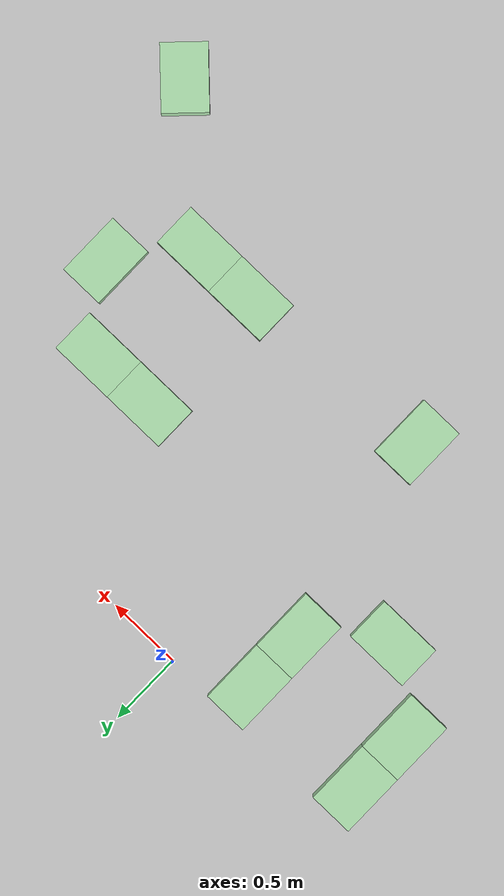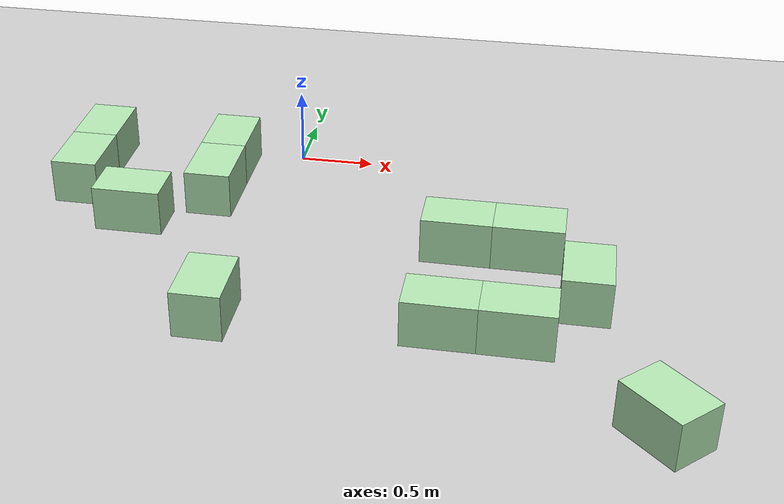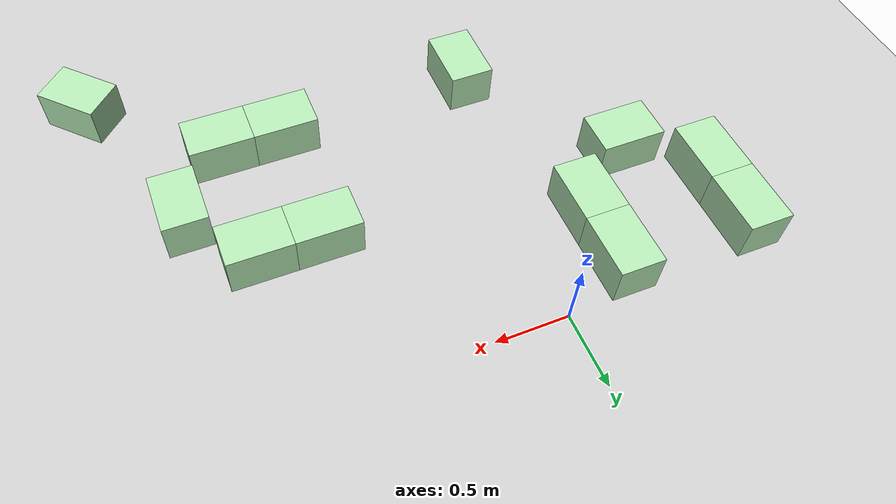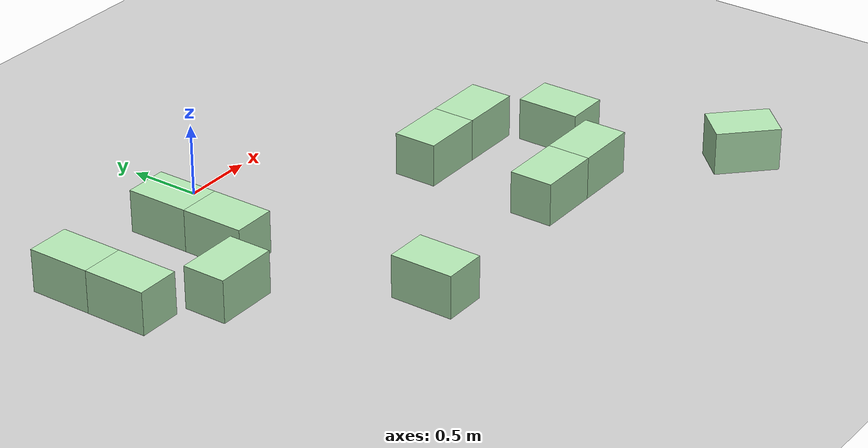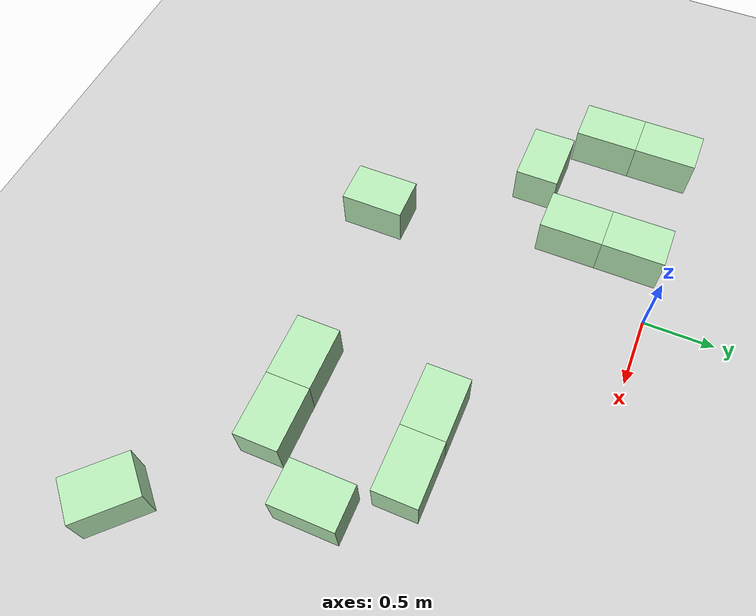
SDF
<?xml version="1.0" encoding="UTF-8"?>
<sdf version="1.4">
  <world name="default">
    <scene>
      <ambient>0.5 0.5 0.5 1</ambient>
      <background>0.5 0.5 0.5 1</background>
      <shadows>false</shadows>
    </scene>
    <physics type="ode">
      <gravity>0 0 -9.81</gravity>
      <ode>
        <solver>
          <type>quick</type>
          <iters>10</iters>
          <sor>1.3</sor>
        </solver>
        <constraints>
          <cfm>0.0</cfm>
          <erp>0.2</erp>
          <contact_max_correcting_vel>100.0</contact_max_correcting_vel>
          <contact_surface_layer>0.001</contact_surface_layer>
        </constraints>
      </ode>
      <real_time_update_rate>1000</real_time_update_rate>
      <max_step_size>0.001</max_step_size>
    </physics>
    <light type="directional" name="directional_light_1">
      <cast_shadows>false</cast_shadows>
      <pose>0 0 30 0.1 0.1 0</pose>
      <diffuse>1.0 1.0 1.0 1</diffuse>
      <specular>.1 .1 .1 1</specular>
      <attenuation>
        <range>300</range>
      </attenuation>
      <direction>0.1 0.1 -1</direction>
    </light>
    <model name='ground_plane'>
      <static>1</static>
      <link name='link'>
        <collision name='collision'>
          <geometry>
            <plane>
              <normal>0 0 1</normal>
              <size>100 100</size>
            </plane>
          </geometry>
          <surface>
            <friction>
              <ode>
                <mu>100</mu>
                <mu2>50</mu2>
              </ode>
              <torsional>
                <ode/>
              </torsional>
            </friction>
            <contact>
              <ode/>
            </contact>
            <bounce/>
          </surface>
          <max_contacts>10</max_contacts>
        </collision>
        <visual name='visual'>
          <cast_shadows>0</cast_shadows>
          <geometry>
            <plane>
              <normal>0 0 1</normal>
              <size>100 100</size>
            </plane>
          </geometry>
          <material>
            <script>
              <uri>file://media/materials/scripts/gazebo.material</uri>
              <name>Gazebo/Grey</name>
            </script>
          </material>
        </visual>
        <self_collide>0</self_collide>
        <kinematic>0</kinematic>
        <gravity>1</gravity>
      </link>
    </model>

<!--______________________________gazebo world______________________________ -->
    <model name="box_1">
      <static>true</static>
      <link name="box_1_link">
        <pose> 1.2192 -1.0668  0.15 0 0 1.5707963267948966</pose>
        <collision name="box_1_collision">
          <geometry>
            <box>
              <size>0.30479999999999996 0.4445 0.3</size>
            </box>
          </geometry>
        </collision>
        <visual name="box_1_visual">
          <geometry>
            <box>
              <size>0.30479999999999996 0.4445 0.3</size>
            </box>
          </geometry>
          <material>
             <ambient>0.7 0.9 0.7 1.0</ambient>
             <diffuse>0.7 0.9 0.7 1.0</diffuse>
             <specular>0.1 0.1 0.1 1</specular>
             <emissive>0 0 0 0</emissive>
           </material>
        </visual>
      </link>
    </model>

    <model name="box_2">
      <static>true</static>
      <link name="box_2_link">
        <pose> 1.6637 -1.0668  0.15 0 0 1.5707963267948966</pose>
        <collision name="box_2_collision">
          <geometry>
            <box>
              <size>0.30479999999999996 0.4445 0.3</size>
            </box>
          </geometry>
        </collision>
        <visual name="box_2_visual">
          <geometry>
            <box>
              <size>0.30479999999999996 0.4445 0.3</size>
            </box>
          </geometry>
          <material>
             <ambient>0.7 0.9 0.7 1.0</ambient>
             <diffuse>0.7 0.9 0.7 1.0</diffuse>
             <specular>0.1 0.1 0.1 1</specular>
             <emissive>0 0 0 0</emissive>
           </material>
        </visual>
      </link>
    </model>

    <model name="box_3">
      <static>true</static>
      <link name="box_3_link">
        <pose> 1.2192 -1.9812  0.15 0 0 1.5707963267948966</pose>
        <collision name="box_3_collision">
          <geometry>
            <box>
              <size>0.30479999999999996 0.4445 0.3</size>
            </box>
          </geometry>
        </collision>
        <visual name="box_3_visual">
          <geometry>
            <box>
              <size>0.30479999999999996 0.4445 0.3</size>
            </box>
          </geometry>
          <material>
             <ambient>0.7 0.9 0.7 1.0</ambient>
             <diffuse>0.7 0.9 0.7 1.0</diffuse>
             <specular>0.1 0.1 0.1 1</specular>
             <emissive>0 0 0 0</emissive>
           </material>
        </visual>
      </link>
    </model>

    <model name="box_4">
      <static>true</static>
      <link name="box_4_link">
        <pose> 1.6637 -1.9812  0.15 0 0 1.5707963267948966</pose>
        <collision name="box_4_collision">
          <geometry>
            <box>
              <size>0.30479999999999996 0.4445 0.3</size>
            </box>
          </geometry>
        </collision>
        <visual name="box_4_visual">
          <geometry>
            <box>
              <size>0.30479999999999996 0.4445 0.3</size>
            </box>
          </geometry>
          <material>
             <ambient>0.7 0.9 0.7 1.0</ambient>
             <diffuse>0.7 0.9 0.7 1.0</diffuse>
             <specular>0.1 0.1 0.1 1</specular>
             <emissive>0 0 0 0</emissive>
           </material>
        </visual>
      </link>
    </model>

    <model name="box_5">
      <static>true</static>
      <link name="box_5_link">
        <pose> 2.03835 -1.524  0.15 0 0 0.0</pose>
        <collision name="box_5_collision">
          <geometry>
            <box>
              <size>0.30479999999999996 0.4445 0.3</size>
            </box>
          </geometry>
        </collision>
        <visual name="box_5_visual">
          <geometry>
            <box>
              <size>0.30479999999999996 0.4445 0.3</size>
            </box>
          </geometry>
          <material>
             <ambient>0.7 0.9 0.7 1.0</ambient>
             <diffuse>0.7 0.9 0.7 1.0</diffuse>
             <specular>0.1 0.1 0.1 1</specular>
             <emissive>0 0 0 0</emissive>
           </material>
        </visual>
      </link>
    </model>

    <model name="box_6">
      <static>true</static>
      <link name="box_6_link">
        <pose> 2.475378440716979 -2.6909045876226387  0.15 0 0 0.7853981633974483</pose>
        <collision name="box_6_collision">
          <geometry>
            <box>
              <size>0.30479999999999996 0.4445 0.3</size>
            </box>
          </geometry>
        </collision>
        <visual name="box_6_visual">
          <geometry>
            <box>
              <size>0.30479999999999996 0.4445 0.3</size>
            </box>
          </geometry>
          <material>
             <ambient>0.7 0.9 0.7 1.0</ambient>
             <diffuse>0.7 0.9 0.7 1.0</diffuse>
             <specular>0.1 0.1 0.1 1</specular>
             <emissive>0 0 0 0</emissive>
           </material>
        </visual>
      </link>
    </model>

    <model name="box_7">
      <static>true</static>
      <link name="box_7_link">
        <pose> -0.15239999999999998 -2.05105  0.15 0 0 0.0</pose>
        <collision name="box_7_collision">
          <geometry>
            <box>
              <size>0.30479999999999996 0.4445 0.3</size>
            </box>
          </geometry>
        </collision>
        <visual name="box_7_visual">
          <geometry>
            <box>
              <size>0.30479999999999996 0.4445 0.3</size>
            </box>
          </geometry>
          <material>
             <ambient>0.7 0.9 0.7 1.0</ambient>
             <diffuse>0.7 0.9 0.7 1.0</diffuse>
             <specular>0.1 0.1 0.1 1</specular>
             <emissive>0 0 0 0</emissive>
           </material>
        </visual>
      </link>
    </model>

    <model name="box_8">
      <static>true</static>
      <link name="box_8_link">
        <pose> -1.3716000000000002 -0.22225  0.15 0 0 0.0</pose>
        <collision name="box_8_collision">
          <geometry>
            <box>
              <size>0.30479999999999996 0.4445 0.3</size>
            </box>
          </geometry>
        </collision>
        <visual name="box_8_visual">
          <geometry>
            <box>
              <size>0.30479999999999996 0.4445 0.3</size>
            </box>
          </geometry>
          <material>
             <ambient>0.7 0.9 0.7 1.0</ambient>
             <diffuse>0.7 0.9 0.7 1.0</diffuse>
             <specular>0.1 0.1 0.1 1</specular>
             <emissive>0 0 0 0</emissive>
           </material>
        </visual>
      </link>
    </model>

    <model name="box_9">
      <static>true</static>
      <link name="box_9_link">
        <pose> -1.3716000000000002 -0.22225  0.15 0 0 0.0</pose>
        <collision name="box_9_collision">
          <geometry>
            <box>
              <size>0.30479999999999996 0.4445 0.3</size>
            </box>
          </geometry>
        </collision>
        <visual name="box_9_visual">
          <geometry>
            <box>
              <size>0.30479999999999996 0.4445 0.3</size>
            </box>
          </geometry>
          <material>
             <ambient>0.7 0.9 0.7 1.0</ambient>
             <diffuse>0.7 0.9 0.7 1.0</diffuse>
             <specular>0.1 0.1 0.1 1</specular>
             <emissive>0 0 0 0</emissive>
           </material>
        </visual>
      </link>
    </model>

    <model name="box_10">
      <static>true</static>
      <link name="box_10_link">
        <pose> -1.3716000000000002 -0.6667500000000001  0.15 0 0 0.0</pose>
        <collision name="box_10_collision">
          <geometry>
            <box>
              <size>0.30479999999999996 0.4445 0.3</size>
            </box>
          </geometry>
        </collision>
        <visual name="box_10_visual">
          <geometry>
            <box>
              <size>0.30479999999999996 0.4445 0.3</size>
            </box>
          </geometry>
          <material>
             <ambient>0.7 0.9 0.7 1.0</ambient>
             <diffuse>0.7 0.9 0.7 1.0</diffuse>
             <specular>0.1 0.1 0.1 1</specular>
             <emissive>0 0 0 0</emissive>
           </material>
        </visual>
      </link>
    </model>

    <model name="box_11">
      <static>true</static>
      <link name="box_11_link">
        <pose> -0.45720000000000005 -0.22225  0.15 0 0 0.0</pose>
        <collision name="box_11_collision">
          <geometry>
            <box>
              <size>0.30479999999999996 0.4445 0.3</size>
            </box>
          </geometry>
        </collision>
        <visual name="box_11_visual">
          <geometry>
            <box>
              <size>0.30479999999999996 0.4445 0.3</size>
            </box>
          </geometry>
          <material>
             <ambient>0.7 0.9 0.7 1.0</ambient>
             <diffuse>0.7 0.9 0.7 1.0</diffuse>
             <specular>0.1 0.1 0.1 1</specular>
             <emissive>0 0 0 0</emissive>
           </material>
        </visual>
      </link>
    </model>

    <model name="box_12">
      <static>true</static>
      <link name="box_12_link">
        <pose> -0.45720000000000005 -0.6667500000000001  0.15 0 0 0.0</pose>
        <collision name="box_12_collision">
          <geometry>
            <box>
              <size>0.30479999999999996 0.4445 0.3</size>
            </box>
          </geometry>
        </collision>
        <visual name="box_12_visual">
          <geometry>
            <box>
              <size>0.30479999999999996 0.4445 0.3</size>
            </box>
          </geometry>
          <material>
             <ambient>0.7 0.9 0.7 1.0</ambient>
             <diffuse>0.7 0.9 0.7 1.0</diffuse>
             <specular>0.1 0.1 0.1 1</specular>
             <emissive>0 0 0 0</emissive>
           </material>
        </visual>
      </link>
    </model>

    <model name="box_13">
      <static>true</static>
      <link name="box_13_link">
        <pose> -0.9144000000000001 -1.0414  0.15 0 0 1.5707963267948966</pose>
        <collision name="box_13_collision">
          <geometry>
            <box>
              <size>0.30479999999999996 0.4445 0.3</size>
            </box>
          </geometry>
        </collision>
        <visual name="box_13_visual">
          <geometry>
            <box>
              <size>0.30479999999999996 0.4445 0.3</size>
            </box>
          </geometry>
          <material>
             <ambient>0.7 0.9 0.7 1.0</ambient>
             <diffuse>0.7 0.9 0.7 1.0</diffuse>
             <specular>0.1 0.1 0.1 1</specular>
             <emissive>0 0 0 0</emissive>
           </material>
        </visual>
      </link>
    </model>

<!--______________________________gazebo world______________________________ -->

  </world>
</sdf>
